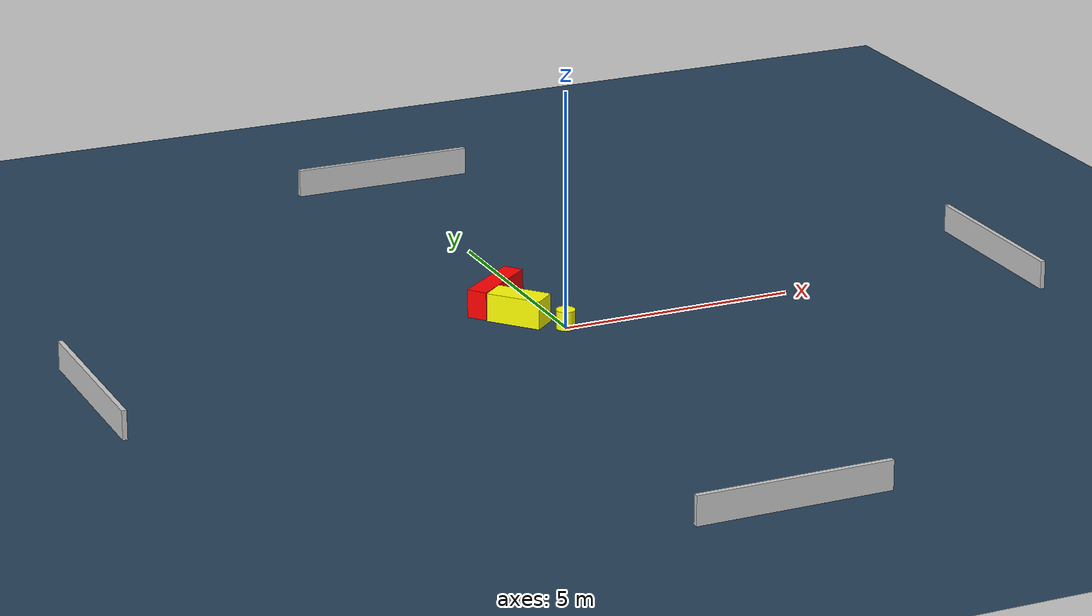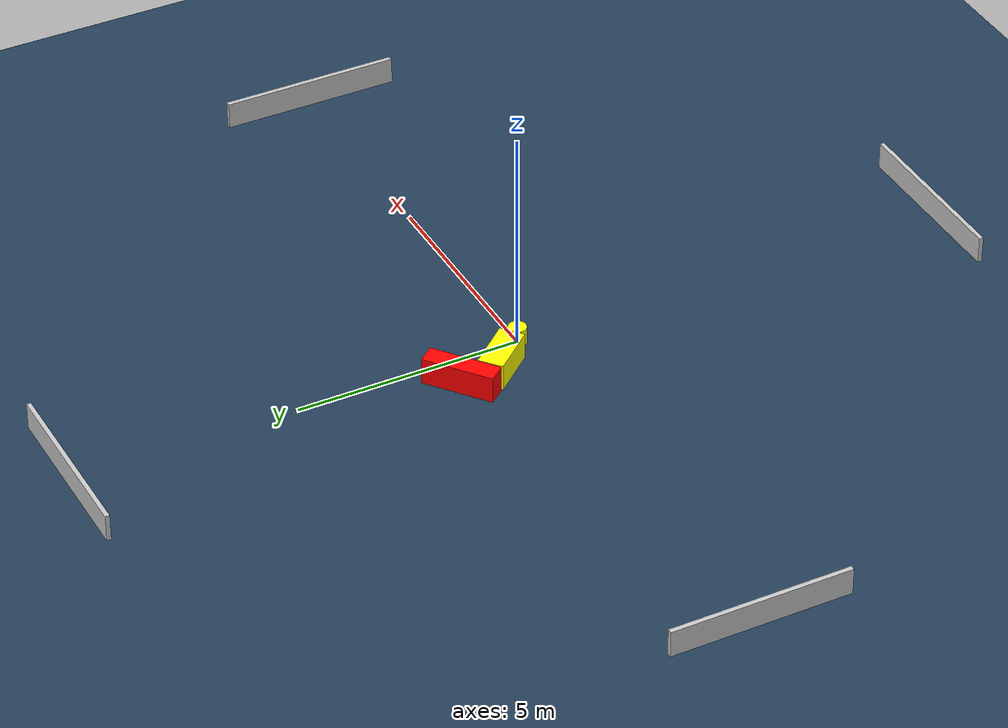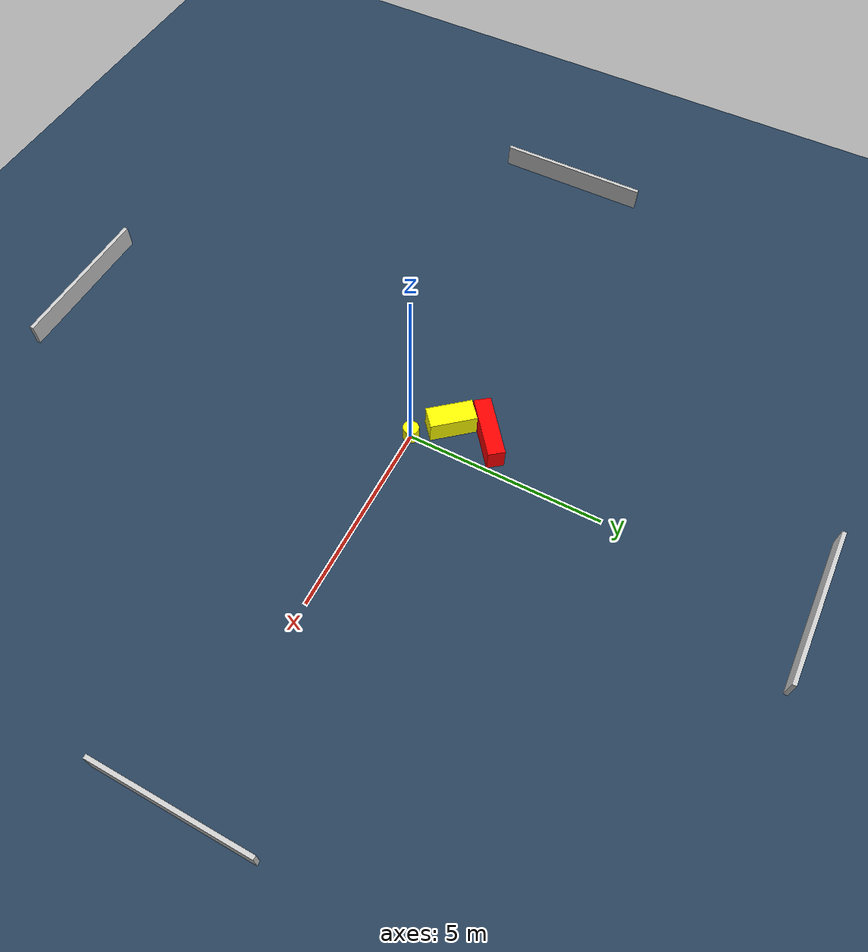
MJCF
<?xml version="1.0" ?>
<mujoco model="generated_environment">
  <option timestep="0.01" integrator="RK4" cone="elliptic"/>
  <default>
    <geom density="1"/>
  </default>
  <asset>
    <texture builtin="gradient" height="3072" name="skybox" rgb1="0.3 0.5 0.7" rgb2="0 0 0" type="skybox" width="512"/>
    <texture builtin="checker" height="300" name="groundplane" rgb1="0.2 0.3 0.4" rgb2="0.1 0.2 0.3" type="2d" width="300"/>
    <material name="groundplane" reflectance="0.2" texrepeat="5 5" texture="groundplane"/>
  </asset>
  <worldbody>
    <light dir="0 0 -1" directional="true" pos="0 0 1.5"/>
    <geom condim="3" friction="0.5 0.005 0.001" material="groundplane" name="floor" pos="0 0 0" size="0 0 0.05" type="plane"/>
    <body name="walls">
      <geom name="wall_1" condim="4" pos="-10.0 0.0 0.3" rgba="0.800000011920929 0.800000011920929 0.800000011920929 1.0" size="0.05 2.0 0.3" type="box"/>
      <geom name="wall_2" condim="4" pos="10.0 0.0 0.3" rgba="0.800000011920929 0.800000011920929 0.800000011920929 1.0" size="0.05 2.0 0.3" type="box"/>
      <geom name="wall_3" condim="4" pos="0.0 -10.0 0.3" rgba="0.800000011920929 0.800000011920929 0.800000011920929 1.0" size="2.0 0.05 0.3" type="box"/>
      <geom name="wall_4" condim="4" pos="0.0 10.0 0.3" rgba="0.800000011920929 0.800000011920929 0.800000011920929 1.0" size="2.0 0.05 0.3" type="box"/>
    </body>
    <body name="robot">
      <joint name="joint_x" type="slide" pos="0 0 0" axis="1 0 0"/>
      <joint name="joint_y" type="slide" pos="0 0 0" axis="0 1 0"/>
      <geom name="robot" type="cylinder" pos="0.0 0.0 0.2" size="0.2 0.2 0.0" mass="5.0" friction="1.0 0.005 0.0001" condim="4" rgba="1.0 1.0 0.0 1.0"/>
    </body>
    <body name="obstacle_1_movable">
      <geom name="obstacle_1_movable" condim="4" pos="-0.7090284798212113 0.7377968379590367 0.3" euler="0 0 40.468321382487346" friction="0.0 0.005 0.001" rgba="1.0 1.0 0.0 1.0" size="0.2779183547856198 0.5878657693015503 0.3" type="box" mass="0.1"/>
      <joint type="free"/>
    </body>
    <body name="obstacle_2_static">
      <geom name="obstacle_2_static" condim="4" pos="-0.8132258409396615 1.7069856888744435 0.3" euler="0 0 218.18645441640396" friction="0.0 0.005 0.001" rgba="1.0 0.0 0.0 1.0" size="0.7979907781618725 0.21577922460663548 0.3" type="box"/>
    </body>
  </worldbody>
  <actuator>
    <motor name="actuator_x" joint="joint_x" gear="1" ctrlrange="-1 1"/>
    <motor name="actuator_y" joint="joint_y" gear="1" ctrlrange="-1 1"/>
  </actuator>
</mujoco>
